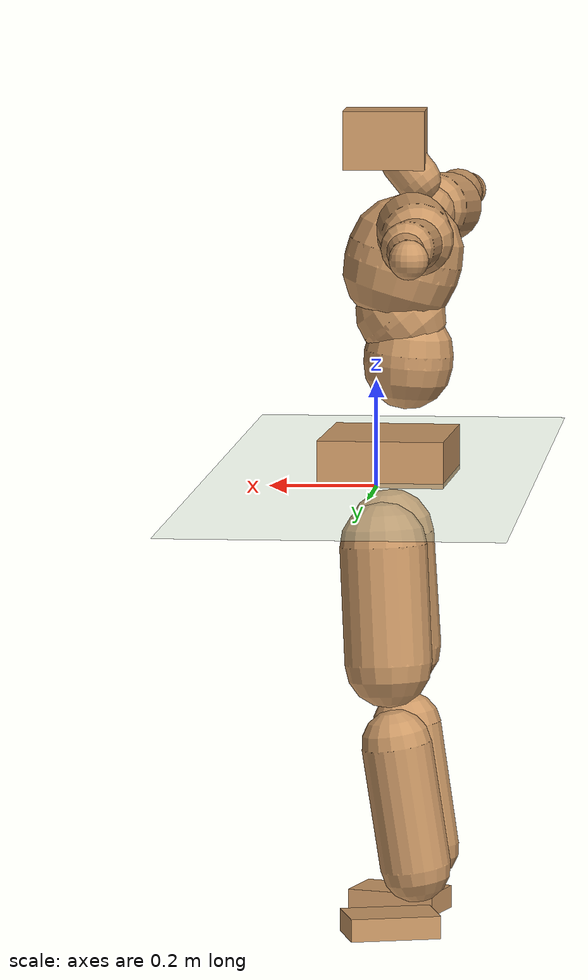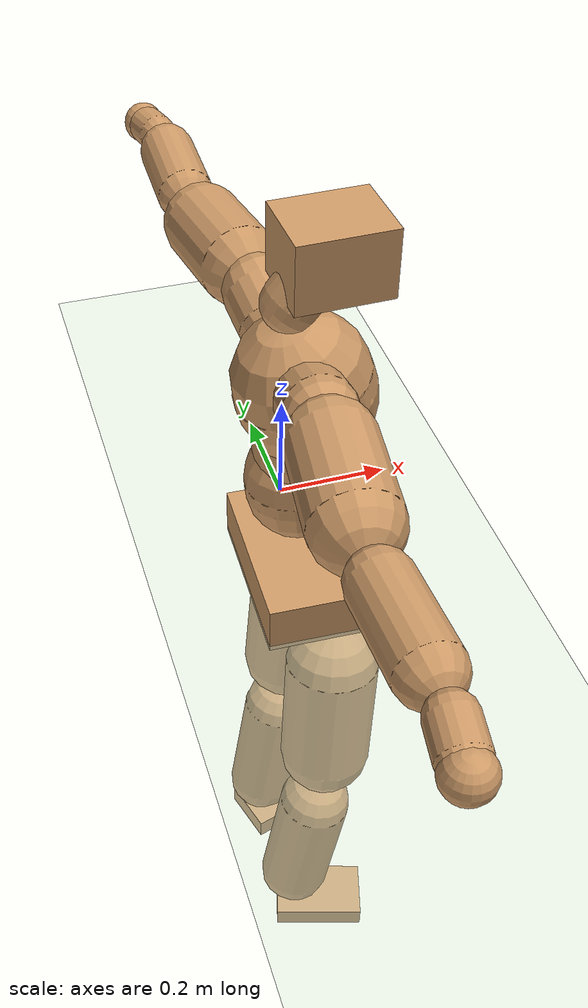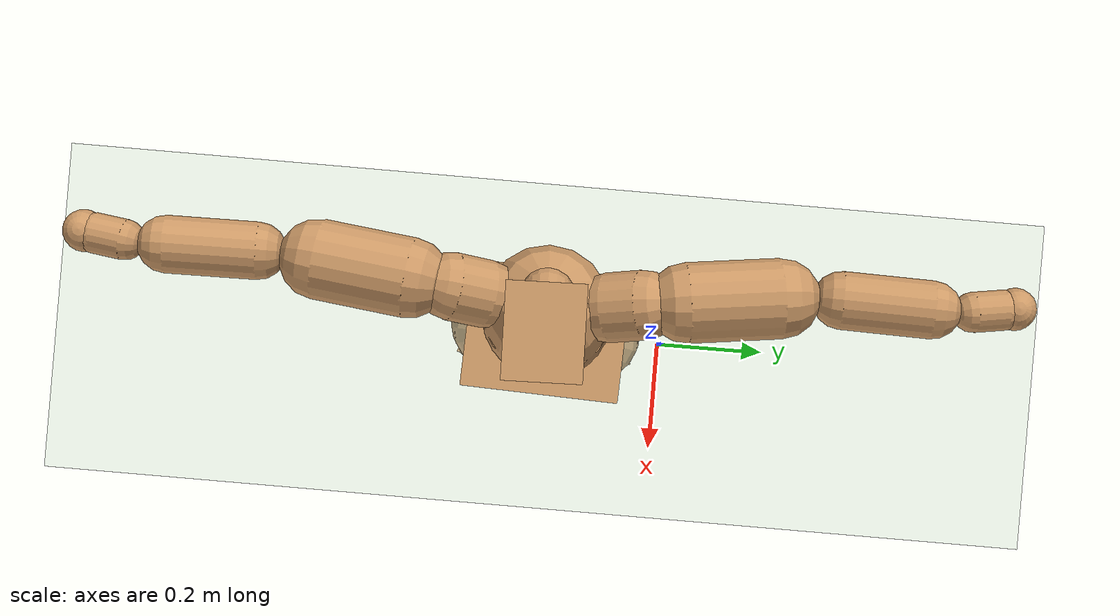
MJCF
<mujoco model="humanoid">
  <compiler coordinate="local" angle="radian"/>
  <default>
    <joint damping="0.0" armature="0.01" stiffness="0.0" limited="true"/>
    <geom conaffinity="1" condim="3" contype="7" margin="0.001" rgba="0.8 0.6 .4 1"/>
  </default>
  <asset>
    <texture type="skybox" builtin="gradient" rgb1=".4 .5 .6" rgb2="0 0 0" width="100" height="100"/>
    <texture builtin="flat" height="1278" mark="cross" markrgb="1 1 1" name="texgeom" random="0.01" rgb1="0.8 0.6 0.4" rgb2="0.8 0.6 0.4" type="cube" width="127"/>
    <texture builtin="checker" height="100" name="texplane" rgb1="0 0 0" rgb2="0.8 0.8 0.8" type="2d" width="100"/>
    <material name="MatPlane" reflectance="0.5" shininess="1" specular="1" texrepeat="60 60" texture="texplane"/>
    <material name="geom" texture="texgeom" texuniform="true"/>
  </asset>
  <worldbody>
    <light cutoff="100" diffuse="1 1 1" dir="-0 0 -1.3" directional="true" exponent="1" pos="0 0 1.3" specular=".1 .1 .1"/>
    <geom conaffinity="1" condim="3" name="floor" pos="0 0 0" rgba="0.8 0.9 0.8 1" size="100 100 .2" type="plane" material="MatPlane"/>
    <body name="Pelvis" pos="0.0007 -0.2149 0.0462">
      <freejoint name="Pelvis"/>
      <geom type="box" contype="1" conaffinity="1" density="500" pos="-0.0059 0.0002 -0.0138" size="0.119 0.149 0.0437" quat="0.9999 0.0000 0.0000 -0.0165" name="Pelvis"/>
      <body name="L_Hip" pos="0 0.0976 -0.0981">
        <joint name="L_Hip_x" type="hinge" pos="0 0 0" axis="1 0 0" stiffness="800" damping="80" armature="0.02" range="-180.0000 180.0000"/>
        <joint name="L_Hip_y" type="hinge" pos="0 0 0" axis="0 1 0" stiffness="800" damping="80" armature="0.02" range="-180.0000 180.0000"/>
        <joint name="L_Hip_z" type="hinge" pos="0 0 0" axis="0 0 1" stiffness="800" damping="80" armature="0.02" range="-180.0000 180.0000"/>
        <geom type="capsule" contype="1" conaffinity="1" density="500" fromto="-0.0037 0.0047 -0.0745 -0.0149 0.0189 -0.2982" size="0.0826" name="L_Hip"/>
        <body name="L_Knee" pos="-0.0186 0.0236 -0.3727">
          <joint name="L_Knee_x" type="hinge" pos="0 0 0" axis="1 0 0" stiffness="800" damping="80" armature="0.02" range="-180.0000 180.0000"/>
          <joint name="L_Knee_y" type="hinge" pos="0 0 0" axis="0 1 0" stiffness="800" damping="80" armature="0.02" range="-180.0000 180.0000"/>
          <joint name="L_Knee_z" type="hinge" pos="0 0 0" axis="0 0 1" stiffness="800" damping="80" armature="0.02" range="-180.0000 180.0000"/>
          <geom type="capsule" contype="1" conaffinity="1" density="500" fromto="-0.0119 -0.0020 -0.0786 -0.0476 -0.0080 -0.3143" size="0.067" name="L_Knee"/>
          <body name="L_Ankle" pos="-0.0595 -0.01 -0.3929">
            <joint name="L_Ankle_x" type="hinge" pos="0 0 0" axis="1 0 0" stiffness="800" damping="80" armature="0.02" range="-180.0000 180.0000"/>
            <joint name="L_Ankle_y" type="hinge" pos="0 0 0" axis="0 1 0" stiffness="800" damping="80" armature="0.02" range="-180.0000 180.0000"/>
            <joint name="L_Ankle_z" type="hinge" pos="0 0 0" axis="0 0 1" stiffness="800" damping="80" armature="0.02" range="-180.0000 180.0000"/>
            <geom type="box" contype="1" conaffinity="1" density="500" pos="0.0585 0.0166 -0.0284" size="0.0863 0.0563 0.0217" quat="0.9905 0.0000 0.0000 0.1376" name="L_Ankle"/>
            <body name="L_Toe" pos="0.1171 0.0332 -0.0567">
              <joint name="L_Toe_x" type="hinge" pos="0 0 0" axis="1 0 0" stiffness="500" damping="50" armature="0.02" range="-180.0000 180.0000"/>
              <joint name="L_Toe_y" type="hinge" pos="0 0 0" axis="0 1 0" stiffness="500" damping="50" armature="0.02" range="-180.0000 180.0000"/>
              <joint name="L_Toe_z" type="hinge" pos="0 0 0" axis="0 0 1" stiffness="500" damping="50" armature="0.02" range="-180.0000 180.0000"/>
              <geom type="box" contype="1" conaffinity="1" density="500" pos="0.0000 0.0000 0.0309" size="0.001 0.0027 0.0012" quat="0.9897 0.0000 0.0000 0.1431" name="L_Toe"/>
            </body>
          </body>
        </body>
      </body>
      <body name="R_Hip" pos="0.0025 -0.0952 -0.098">
        <joint name="R_Hip_x" type="hinge" pos="0 0 0" axis="1 0 0" stiffness="800" damping="80" armature="0.02" range="-180.0000 180.0000"/>
        <joint name="R_Hip_y" type="hinge" pos="0 0 0" axis="0 1 0" stiffness="800" damping="80" armature="0.02" range="-180.0000 180.0000"/>
        <joint name="R_Hip_z" type="hinge" pos="0 0 0" axis="0 0 1" stiffness="800" damping="80" armature="0.02" range="-180.0000 180.0000"/>
        <geom type="capsule" contype="1" conaffinity="1" density="500" fromto="-0.0042 -0.0065 -0.0753 -0.0169 -0.0258 -0.3014" size="0.0818" name="R_Hip"/>
        <body name="R_Knee" pos="-0.0211 -0.0323 -0.3767">
          <joint name="R_Knee_x" type="hinge" pos="0 0 0" axis="1 0 0" stiffness="800" damping="80" armature="0.02" range="-180.0000 180.0000"/>
          <joint name="R_Knee_y" type="hinge" pos="0 0 0" axis="0 1 0" stiffness="800" damping="80" armature="0.02" range="-180.0000 180.0000"/>
          <joint name="R_Knee_z" type="hinge" pos="0 0 0" axis="0 0 1" stiffness="800" damping="80" armature="0.02" range="-180.0000 180.0000"/>
          <geom type="capsule" contype="1" conaffinity="1" density="500" fromto="-0.0117 0.0022 -0.0790 -0.0470 0.0087 -0.3159" size="0.0666" name="R_Knee"/>
          <body name="R_Ankle" pos="-0.0587 0.0109 -0.3948">
            <joint name="R_Ankle_x" type="hinge" pos="0 0 0" axis="1 0 0" stiffness="800" damping="80" armature="0.02" range="-180.0000 180.0000"/>
            <joint name="R_Ankle_y" type="hinge" pos="0 0 0" axis="0 1 0" stiffness="800" damping="80" armature="0.02" range="-180.0000 180.0000"/>
            <joint name="R_Ankle_z" type="hinge" pos="0 0 0" axis="0 0 1" stiffness="800" damping="80" armature="0.02" range="-180.0000 180.0000"/>
            <geom type="box" contype="1" conaffinity="1" density="500" pos="0.0611 -0.0180 -0.0259" size="0.0862 0.054 0.0217" quat="0.9897 0.0000 0.0000 -0.1430" name="R_Ankle"/>
            <body name="R_Toe" pos="0.1223 -0.0361 -0.0518">
              <joint name="R_Toe_x" type="hinge" pos="0 0 0" axis="1 0 0" stiffness="500" damping="50" armature="0.02" range="-180.0000 180.0000"/>
              <joint name="R_Toe_y" type="hinge" pos="0 0 0" axis="0 1 0" stiffness="500" damping="50" armature="0.02" range="-180.0000 180.0000"/>
              <joint name="R_Toe_z" type="hinge" pos="0 0 0" axis="0 0 1" stiffness="500" damping="50" armature="0.02" range="-180.0000 180.0000"/>
              <geom type="box" contype="1" conaffinity="1" density="500" pos="0.0000 0.0000 0.0278" size="0.0011 0.0025 0.0012" quat="0.9911 0.0000 0.0000 -0.1334" name="R_Toe"/>
            </body>
          </body>
        </body>
      </body>
      <body name="Torso" pos="-0.0378 -0.0012 0.1135">
        <joint name="Torso_x" type="hinge" pos="0 0 0" axis="1 0 0" stiffness="1000" damping="100" armature="0.02" range="-180.0000 180.0000"/>
        <joint name="Torso_y" type="hinge" pos="0 0 0" axis="0 1 0" stiffness="1000" damping="100" armature="0.02" range="-180.0000 180.0000"/>
        <joint name="Torso_z" type="hinge" pos="0 0 0" axis="0 0 1" stiffness="1000" damping="100" armature="0.02" range="-180.0000 180.0000"/>
        <geom type="capsule" contype="1" conaffinity="1" density="500" fromto="-0.0059 0.0011 0.0690 -0.0040 0.0008 0.0460" size="0.0846" name="Torso"/>
        <body name="Spine" pos="-0.0099 0.0019 0.115">
          <joint name="Spine_x" type="hinge" pos="0 0 0" axis="1 0 0" stiffness="1000" damping="100" armature="0.02" range="-180.0000 180.0000"/>
          <joint name="Spine_y" type="hinge" pos="0 0 0" axis="0 1 0" stiffness="1000" damping="100" armature="0.02" range="-180.0000 180.0000"/>
          <joint name="Spine_z" type="hinge" pos="0 0 0" axis="0 0 1" stiffness="1000" damping="100" armature="0.02" range="-180.0000 180.0000"/>
          <geom type="capsule" contype="1" conaffinity="1" density="500" fromto="0.0232 0.0002 0.0290 0.0155 0.0001 0.0193" size="0.0825" name="Spine"/>
          <body name="Chest" pos="0.0387 0.0003 0.0483">
            <joint name="Chest_x" type="hinge" pos="0 0 0" axis="1 0 0" stiffness="1000" damping="100" armature="0.02" range="-180.0000 180.0000"/>
            <joint name="Chest_y" type="hinge" pos="0 0 0" axis="0 1 0" stiffness="1000" damping="100" armature="0.02" range="-180.0000 180.0000"/>
            <joint name="Chest_z" type="hinge" pos="0 0 0" axis="0 0 1" stiffness="1000" damping="100" armature="0.02" range="-180.0000 180.0000"/>
            <geom type="capsule" contype="1" conaffinity="1" density="500" fromto="-0.0286 -0.0005 0.0955 -0.0191 -0.0003 0.0637" size="0.1102" name="Chest"/>
            <body name="Neck" pos="-0.0601 -0.0014 0.2234">
              <joint name="Neck_x" type="hinge" pos="0 0 0" axis="1 0 0" stiffness="500" damping="50" armature="0.02" range="-180.0000 180.0000"/>
              <joint name="Neck_y" type="hinge" pos="0 0 0" axis="0 1 0" stiffness="500" damping="50" armature="0.02" range="-180.0000 180.0000"/>
              <joint name="Neck_z" type="hinge" pos="0 0 0" axis="0 0 1" stiffness="500" damping="50" armature="0.02" range="-180.0000 180.0000"/>
              <geom type="capsule" contype="1" conaffinity="1" density="500" fromto="0.0093 -0.0001 0.0114 0.0370 -0.0005 0.0457" size="0.044" name="Neck"/>
              <body name="Head" pos="0.0463 -0.0006 0.0571">
                <joint name="Head_x" type="hinge" pos="0 0 0" axis="1 0 0" stiffness="500" damping="50" armature="0.02" range="-180.0000 180.0000"/>
                <joint name="Head_y" type="hinge" pos="0 0 0" axis="0 1 0" stiffness="500" damping="50" armature="0.02" range="-180.0000 180.0000"/>
                <joint name="Head_z" type="hinge" pos="0 0 0" axis="0 0 1" stiffness="500" damping="50" armature="0.02" range="-180.0000 180.0000"/>
                <geom type="box" contype="1" conaffinity="1" density="500" pos="0.0241 0.0007 0.0296" size="0.0768 0.063 0.0553" quat="0.9999 0.0000 0.0000 0.0141" name="Head"/>
              </body>
            </body>
            <body name="L_Thorax" pos="-0.0385 0.0836 0.1273">
              <joint name="L_Thorax_x" type="hinge" pos="0 0 0" axis="1 0 0" stiffness="500" damping="50" armature="0.02" range="-180.0000 180.0000"/>
              <joint name="L_Thorax_y" type="hinge" pos="0 0 0" axis="0 1 0" stiffness="500" damping="50" armature="0.02" range="-180.0000 180.0000"/>
              <joint name="L_Thorax_z" type="hinge" pos="0 0 0" axis="0 0 1" stiffness="500" damping="50" armature="0.02" range="-180.0000 180.0000"/>
              <geom type="capsule" contype="1" conaffinity="1" density="500" fromto="-0.0028 0.0185 0.0072 -0.0111 0.0739 0.0289" size="0.0586" name="L_Thorax"/>
              <body name="L_Shoulder" pos="-0.0139 0.0924 0.0362">
                <joint name="L_Shoulder_x" type="hinge" pos="0 0 0" axis="1 0 0" stiffness="500" damping="50" armature="0.02" range="-720.0000 720.0000"/>
                <joint name="L_Shoulder_y" type="hinge" pos="0 0 0" axis="0 1 0" stiffness="500" damping="50" armature="0.02" range="-720.0000 720.0000"/>
                <joint name="L_Shoulder_z" type="hinge" pos="0 0 0" axis="0 0 1" stiffness="500" damping="50" armature="0.02" range="-720.0000 720.0000"/>
                <geom type="capsule" contype="1" conaffinity="1" density="500" fromto="-0.0068 0.0511 -0.0026 -0.0273 0.2042 -0.0104" size="0.0672" name="L_Shoulder"/>
                <body name="L_Elbow" pos="-0.0341 0.2553 -0.013">
                  <joint name="L_Elbow_x" type="hinge" pos="0 0 0" axis="1 0 0" stiffness="500" damping="50" armature="0.02" range="-720.0000 720.0000"/>
                  <joint name="L_Elbow_y" type="hinge" pos="0 0 0" axis="0 1 0" stiffness="500" damping="50" armature="0.02" range="-720.0000 720.0000"/>
                  <joint name="L_Elbow_z" type="hinge" pos="0 0 0" axis="0 0 1" stiffness="500" damping="50" armature="0.02" range="-720.0000 720.0000"/>
                  <geom type="capsule" contype="1" conaffinity="1" density="500" fromto="0.0010 0.0498 0.0022 0.0041 0.1991 0.0088" size="0.0481" name="L_Elbow"/>
                  <body name="L_Wrist" pos="0.0051 0.2489 0.011">
                    <joint name="L_Wrist_x" type="hinge" pos="0 0 0" axis="1 0 0" stiffness="300" damping="30" armature="0.02" range="-180.0000 180.0000"/>
                    <joint name="L_Wrist_y" type="hinge" pos="0 0 0" axis="0 1 0" stiffness="300" damping="30" armature="0.02" range="-180.0000 180.0000"/>
                    <joint name="L_Wrist_z" type="hinge" pos="0 0 0" axis="0 0 1" stiffness="300" damping="30" armature="0.02" range="-180.0000 180.0000"/>
                    <geom type="capsule" contype="1" conaffinity="1" density="500" fromto="-0.0028 0.0175 -0.0021 -0.0112 0.0701 -0.0086" size="0.0338" name="L_Wrist"/>
                    <body name="L_Hand" pos="-0.014 0.0876 -0.0107">
                      <joint name="L_Hand_x" type="hinge" pos="0 0 0" axis="1 0 0" stiffness="300" damping="30" armature="0.02" range="-180.0000 180.0000"/>
                      <joint name="L_Hand_y" type="hinge" pos="0 0 0" axis="0 1 0" stiffness="300" damping="30" armature="0.02" range="-180.0000 180.0000"/>
                      <joint name="L_Hand_z" type="hinge" pos="0 0 0" axis="0 0 1" stiffness="300" damping="30" armature="0.02" range="-180.0000 180.0000"/>
                      <geom type="sphere" contype="1" conaffinity="1" density="500" size="0.0354" pos="0.0000 0.0000 0.0000" name="L_Hand"/>
                    </body>
                  </body>
                </body>
              </body>
            </body>
            <body name="R_Thorax" pos="-0.0446 -0.0845 0.1269">
              <joint name="R_Thorax_x" type="hinge" pos="0 0 0" axis="1 0 0" stiffness="500" damping="50" armature="0.02" range="-180.0000 180.0000"/>
              <joint name="R_Thorax_y" type="hinge" pos="0 0 0" axis="0 1 0" stiffness="500" damping="50" armature="0.02" range="-180.0000 180.0000"/>
              <joint name="R_Thorax_z" type="hinge" pos="0 0 0" axis="0 0 1" stiffness="500" damping="50" armature="0.02" range="-180.0000 180.0000"/>
              <geom type="capsule" contype="1" conaffinity="1" density="500" fromto="-0.0022 -0.0190 0.0074 -0.0089 -0.0759 0.0296" size="0.0571" name="R_Thorax"/>
              <body name="R_Shoulder" pos="-0.0111 -0.0949 0.037">
                <joint name="R_Shoulder_x" type="hinge" pos="0 0 0" axis="1 0 0" stiffness="500" damping="50" armature="0.02" range="-720.0000 720.0000"/>
                <joint name="R_Shoulder_y" type="hinge" pos="0 0 0" axis="0 1 0" stiffness="500" damping="50" armature="0.02" range="-720.0000 720.0000"/>
                <joint name="R_Shoulder_z" type="hinge" pos="0 0 0" axis="0 0 1" stiffness="500" damping="50" armature="0.02" range="-720.0000 720.0000"/>
                <geom type="capsule" contype="1" conaffinity="1" density="500" fromto="-0.0060 -0.0506 -0.0029 -0.0239 -0.2025 -0.0116" size="0.0673" name="R_Shoulder"/>
                <body name="R_Elbow" pos="-0.0299 -0.2532 -0.0144">
                  <joint name="R_Elbow_x" type="hinge" pos="0 0 0" axis="1 0 0" stiffness="500" damping="50" armature="0.02" range="-720.0000 720.0000"/>
                  <joint name="R_Elbow_y" type="hinge" pos="0 0 0" axis="0 1 0" stiffness="500" damping="50" armature="0.02" range="-720.0000 720.0000"/>
                  <joint name="R_Elbow_z" type="hinge" pos="0 0 0" axis="0 0 1" stiffness="500" damping="50" armature="0.02" range="-720.0000 720.0000"/>
                  <geom type="capsule" contype="1" conaffinity="1" density="500" fromto="0.0008 -0.0503 0.0025 0.0031 -0.2013 0.0100" size="0.0477" name="R_Elbow"/>
                  <body name="R_Wrist" pos="0.0039 -0.2517 0.0125">
                    <joint name="R_Wrist_x" type="hinge" pos="0 0 0" axis="1 0 0" stiffness="300" damping="30" armature="0.02" range="-180.0000 180.0000"/>
                    <joint name="R_Wrist_y" type="hinge" pos="0 0 0" axis="0 1 0" stiffness="300" damping="30" armature="0.02" range="-180.0000 180.0000"/>
                    <joint name="R_Wrist_z" type="hinge" pos="0 0 0" axis="0 0 1" stiffness="300" damping="30" armature="0.02" range="-180.0000 180.0000"/>
                    <geom type="capsule" contype="1" conaffinity="1" density="500" fromto="-0.0023 -0.0174 -0.0016 -0.0094 -0.0694 -0.0064" size="0.0341" name="R_Wrist"/>
                    <body name="R_Hand" pos="-0.0117 -0.0868 -0.008">
                      <joint name="R_Hand_x" type="hinge" pos="0 0 0" axis="1 0 0" stiffness="300" damping="30" armature="0.02" range="-180.0000 180.0000"/>
                      <joint name="R_Hand_y" type="hinge" pos="0 0 0" axis="0 1 0" stiffness="300" damping="30" armature="0.02" range="-180.0000 180.0000"/>
                      <joint name="R_Hand_z" type="hinge" pos="0 0 0" axis="0 0 1" stiffness="300" damping="30" armature="0.02" range="-180.0000 180.0000"/>
                      <geom type="sphere" contype="1" conaffinity="1" density="500" size="0.0351" pos="0.0000 0.0000 0.0000" name="R_Hand"/>
                    </body>
                  </body>
                </body>
              </body>
            </body>
          </body>
        </body>
      </body>
    </body>
  </worldbody>
  <actuator>
    <motor name="L_Hip_x" joint="L_Hip_x" gear="500"/>
    <motor name="L_Hip_y" joint="L_Hip_y" gear="500"/>
    <motor name="L_Hip_z" joint="L_Hip_z" gear="500"/>
    <motor name="L_Knee_x" joint="L_Knee_x" gear="500"/>
    <motor name="L_Knee_y" joint="L_Knee_y" gear="500"/>
    <motor name="L_Knee_z" joint="L_Knee_z" gear="500"/>
    <motor name="L_Ankle_x" joint="L_Ankle_x" gear="500"/>
    <motor name="L_Ankle_y" joint="L_Ankle_y" gear="500"/>
    <motor name="L_Ankle_z" joint="L_Ankle_z" gear="500"/>
    <motor name="L_Toe_x" joint="L_Toe_x" gear="500"/>
    <motor name="L_Toe_y" joint="L_Toe_y" gear="500"/>
    <motor name="L_Toe_z" joint="L_Toe_z" gear="500"/>
    <motor name="R_Hip_x" joint="R_Hip_x" gear="500"/>
    <motor name="R_Hip_y" joint="R_Hip_y" gear="500"/>
    <motor name="R_Hip_z" joint="R_Hip_z" gear="500"/>
    <motor name="R_Knee_x" joint="R_Knee_x" gear="500"/>
    <motor name="R_Knee_y" joint="R_Knee_y" gear="500"/>
    <motor name="R_Knee_z" joint="R_Knee_z" gear="500"/>
    <motor name="R_Ankle_x" joint="R_Ankle_x" gear="500"/>
    <motor name="R_Ankle_y" joint="R_Ankle_y" gear="500"/>
    <motor name="R_Ankle_z" joint="R_Ankle_z" gear="500"/>
    <motor name="R_Toe_x" joint="R_Toe_x" gear="500"/>
    <motor name="R_Toe_y" joint="R_Toe_y" gear="500"/>
    <motor name="R_Toe_z" joint="R_Toe_z" gear="500"/>
    <motor name="Torso_x" joint="Torso_x" gear="500"/>
    <motor name="Torso_y" joint="Torso_y" gear="500"/>
    <motor name="Torso_z" joint="Torso_z" gear="500"/>
    <motor name="Spine_x" joint="Spine_x" gear="500"/>
    <motor name="Spine_y" joint="Spine_y" gear="500"/>
    <motor name="Spine_z" joint="Spine_z" gear="500"/>
    <motor name="Chest_x" joint="Chest_x" gear="500"/>
    <motor name="Chest_y" joint="Chest_y" gear="500"/>
    <motor name="Chest_z" joint="Chest_z" gear="500"/>
    <motor name="Neck_x" joint="Neck_x" gear="500"/>
    <motor name="Neck_y" joint="Neck_y" gear="500"/>
    <motor name="Neck_z" joint="Neck_z" gear="500"/>
    <motor name="Head_x" joint="Head_x" gear="500"/>
    <motor name="Head_y" joint="Head_y" gear="500"/>
    <motor name="Head_z" joint="Head_z" gear="500"/>
    <motor name="L_Thorax_x" joint="L_Thorax_x" gear="500"/>
    <motor name="L_Thorax_y" joint="L_Thorax_y" gear="500"/>
    <motor name="L_Thorax_z" joint="L_Thorax_z" gear="500"/>
    <motor name="L_Shoulder_x" joint="L_Shoulder_x" gear="500"/>
    <motor name="L_Shoulder_y" joint="L_Shoulder_y" gear="500"/>
    <motor name="L_Shoulder_z" joint="L_Shoulder_z" gear="500"/>
    <motor name="L_Elbow_x" joint="L_Elbow_x" gear="500"/>
    <motor name="L_Elbow_y" joint="L_Elbow_y" gear="500"/>
    <motor name="L_Elbow_z" joint="L_Elbow_z" gear="500"/>
    <motor name="L_Wrist_x" joint="L_Wrist_x" gear="500"/>
    <motor name="L_Wrist_y" joint="L_Wrist_y" gear="500"/>
    <motor name="L_Wrist_z" joint="L_Wrist_z" gear="500"/>
    <motor name="L_Hand_x" joint="L_Hand_x" gear="500"/>
    <motor name="L_Hand_y" joint="L_Hand_y" gear="500"/>
    <motor name="L_Hand_z" joint="L_Hand_z" gear="500"/>
    <motor name="R_Thorax_x" joint="R_Thorax_x" gear="500"/>
    <motor name="R_Thorax_y" joint="R_Thorax_y" gear="500"/>
    <motor name="R_Thorax_z" joint="R_Thorax_z" gear="500"/>
    <motor name="R_Shoulder_x" joint="R_Shoulder_x" gear="500"/>
    <motor name="R_Shoulder_y" joint="R_Shoulder_y" gear="500"/>
    <motor name="R_Shoulder_z" joint="R_Shoulder_z" gear="500"/>
    <motor name="R_Elbow_x" joint="R_Elbow_x" gear="500"/>
    <motor name="R_Elbow_y" joint="R_Elbow_y" gear="500"/>
    <motor name="R_Elbow_z" joint="R_Elbow_z" gear="500"/>
    <motor name="R_Wrist_x" joint="R_Wrist_x" gear="500"/>
    <motor name="R_Wrist_y" joint="R_Wrist_y" gear="500"/>
    <motor name="R_Wrist_z" joint="R_Wrist_z" gear="500"/>
    <motor name="R_Hand_x" joint="R_Hand_x" gear="500"/>
    <motor name="R_Hand_y" joint="R_Hand_y" gear="500"/>
    <motor name="R_Hand_z" joint="R_Hand_z" gear="500"/>
  </actuator>
  <contact>
    <exclude body1="Torso" body2="Chest"/>
    <exclude body1="Head" body2="Chest"/>
    <exclude body1="R_Knee" body2="R_Toe"/>
    <exclude body1="R_Knee" body2="L_Ankle"/>
    <exclude body1="R_Knee" body2="L_Toe"/>
    <exclude body1="L_Knee" body2="L_Toe"/>
    <exclude body1="L_Knee" body2="R_Ankle"/>
    <exclude body1="L_Knee" body2="R_Toe"/>
    <exclude body1="L_Shoulder" body2="Chest"/>
    <exclude body1="R_Shoulder" body2="Chest"/>
  </contact>
  <sensor/>
  <size njmax="700" nconmax="700"/>
</mujoco>
